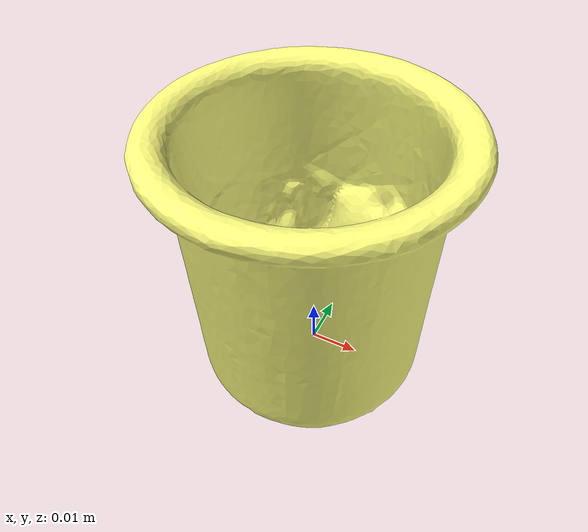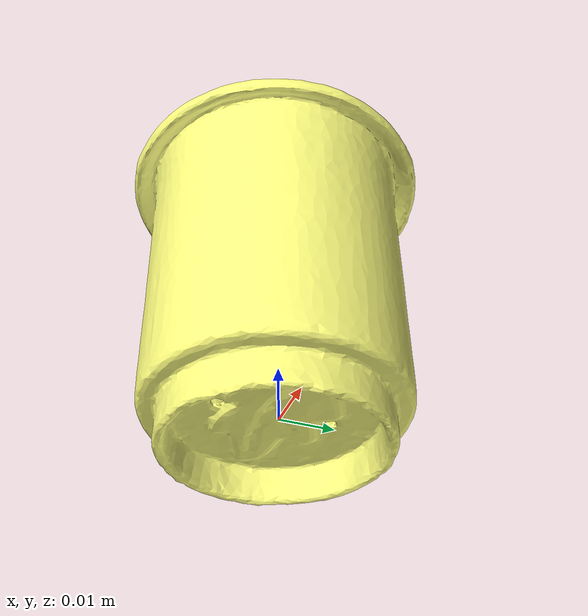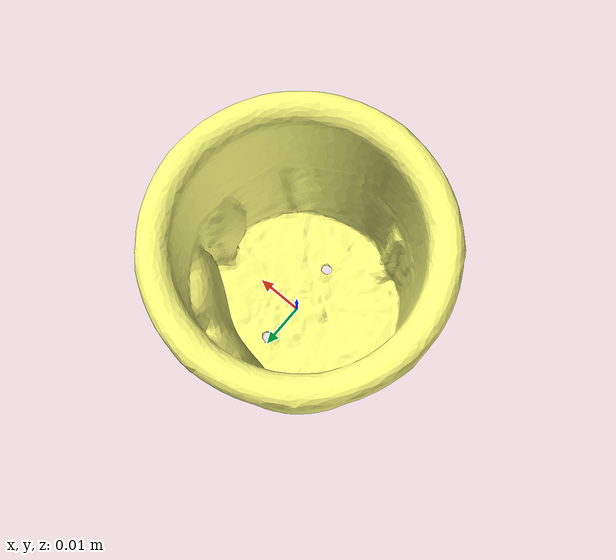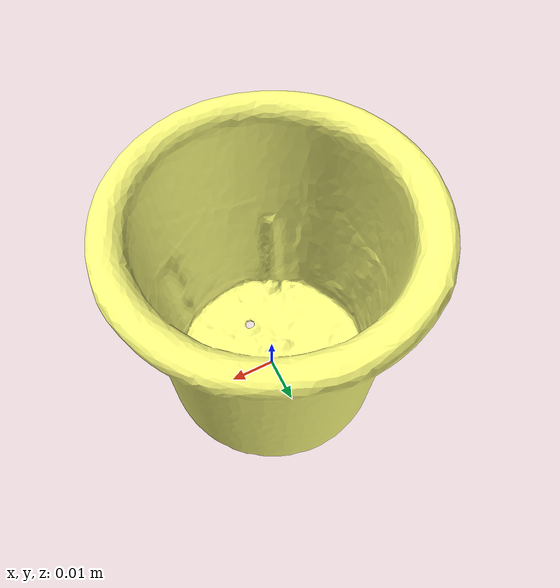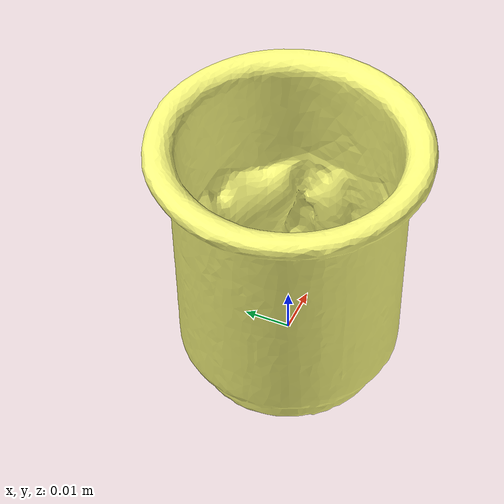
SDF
<?xml version="1.0" ?>
<sdf version='1.4'>
  <model name="cup_a2">
      <static>0</static>
      <link name='link'>
        <inertial>
          <!-- Weight = 0.185lb -> 0.083914588kg-->
          <mass>0.023914588</mass>
          <inertia>
            <ixx>1.291e-7</ixx>
            <ixy>-1e-9</ixy>
            <ixz>2e-9</ixz>
            <iyy>1.272e-7</iyy>
            <iyz>5.2e-9</iyz>
            <izz>1.086e-7</izz>
          </inertia>
        </inertial>
        <collision name='collision'>
          <geometry>
            <mesh>
              <uri>model://cup_a2/meshes/cup_a2.stl</uri>
              <scale>1 1 1</scale>
            </mesh>
          </geometry>
          <surface>
            <friction>
              <ode>
                <mu>30.0</mu>
                <mu2>30.0</mu2>
              </ode>
            </friction>
          </surface>
        </collision>
        <visual name='visual'>
          <geometry>
            <mesh>
              <uri>model://cup_a2/meshes/cup_a2.dae</uri>
              <scale>1 1 1</scale>
            </mesh>
          </geometry>
          <material>
            <diffuse>1 1 0.5 1</diffuse>
          </material>
        </visual>
        <velocity_decay>
          <linear>0.000000</linear>
          <angular>0.000000</angular>
        </velocity_decay>
        <self_collide>0</self_collide>
        <kinematic>0</kinematic>
        <gravity>1</gravity>
      </link>
  </model>
</sdf>
